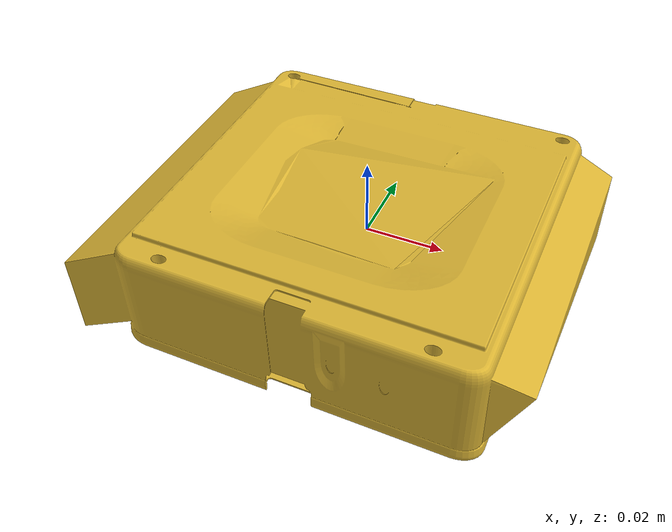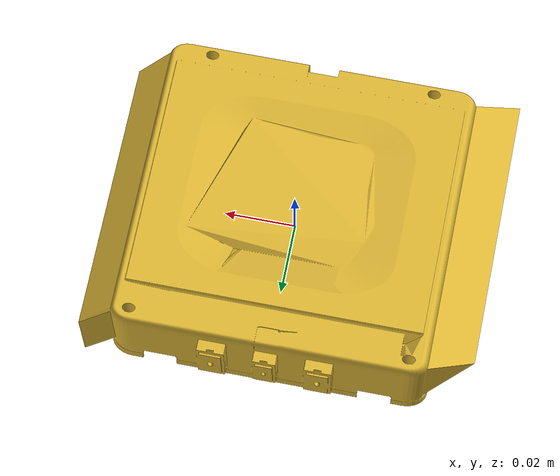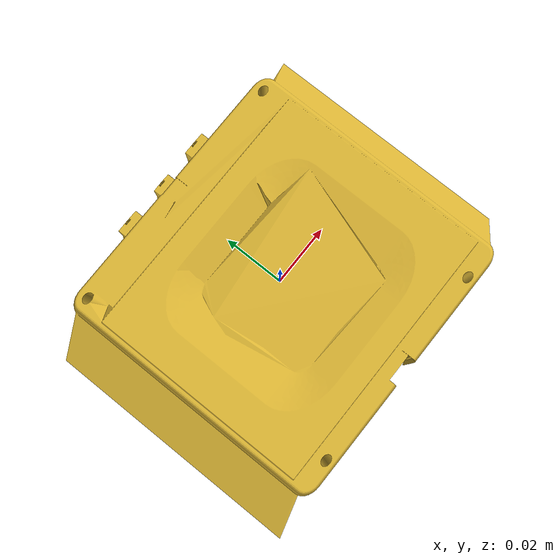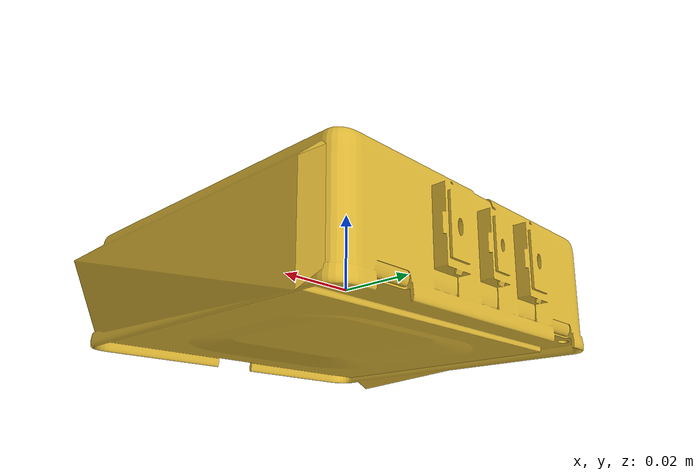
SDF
<?xml version="1.0" ?>

<sdf version="1.5">
  <model name="object_b">
    <static>false</static>
    <link name="leaf_cell_link">
      <collision name="collision">
        <geometry>
      	  <box>
            <size> 0.109 0.09 0.034</size>
          </box>
        </geometry>
		<surface>
			<friction>
				<ode>
					<mu>0.98</mu>
					<mu2>0.98</mu2>
				</ode>
			</friction>
		</surface>
      </collision>
      <visual name="visual">
        <geometry>
          <mesh>
            <uri>model://object_b/meshes/object_b.dae</uri>
          </mesh>
        </geometry>
        <material>
		    <script>
		        <uri>file://media/materials/scripts/gazebo.material</uri>
		        <name>Gazebo/Gold</name>
		    </script>
        </material>
      </visual>
	  <inertial>
			<pose>0.0 0.0 0.0 0.0 0.0 0.0</pose>
		    <mass>0.1</mass>
		    <inertia>
    		  <ixx>0.000021666</ixx>
		      <iyy>0.000022</iyy>
		      <izz>0.000041667</izz>
		      <ixy>0.0</ixy>
		      <ixz>0.0</ixz>
		      <iyz>0.0</iyz>
		    </inertia>
	  </inertial>
	</link>
  </model>
</sdf>
